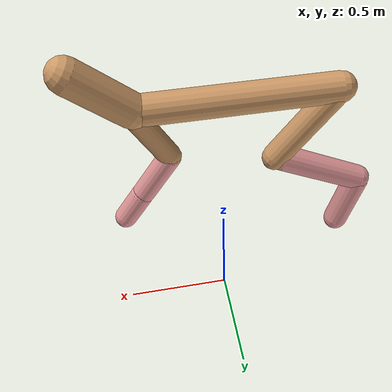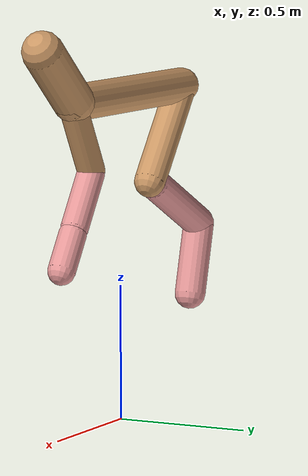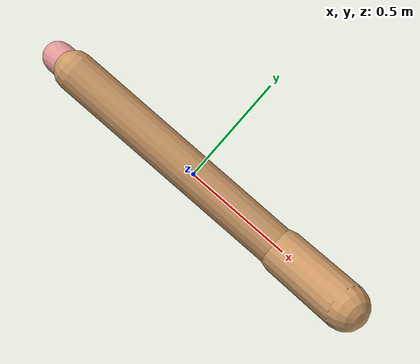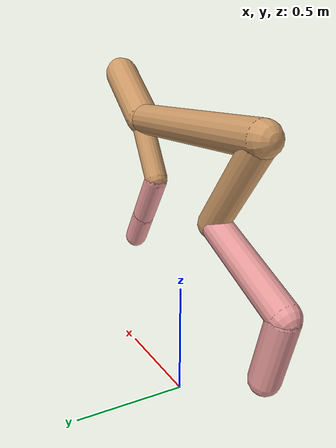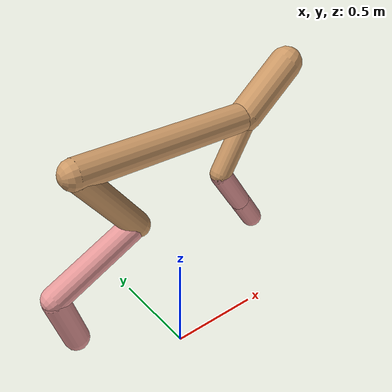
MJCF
<mujoco model="cheetah">
  <compiler angle="radian" coordinate="local" inertiafromgeom="true" settotalmass="14" />
  <default>
    <joint armature=".1" damping=".01" limited="true" solimplimit="0 .8 .03" solreflimit=".02 1" stiffness="8" />
    <geom conaffinity="0" condim="3" contype="1" friction="0.8 .1 .1" rgba="0.8 0.6 .4 1" solimp="0.0 0.8 0.01" solref="0.02 1" />
    <motor ctrllimited="true" ctrlrange="-1 1" />
  </default>
  <size nstack="300000" nuser_geom="1" />
  <option gravity="0 0 -9.81" timestep="0.01" />
  <worldbody>
    <body name="torso" pos="0.0 0.0 1.2042171462243685">
      <joint armature="0" axis="1 0 0" damping="0" limited="false" name="ignorex" pos="0 0 0" stiffness="0" type="slide" />
      <joint armature="0" axis="0 0 1" damping="0" limited="false" name="ignorez" pos="0 0 0" stiffness="0" type="slide" />
      <joint armature="0" axis="0 1 0" damping="0" limited="false" name="ignorey" pos="0 0 0" stiffness="0" type="hinge" />
      <geom fromto="-0.5 0.0 0.0 0.38236002416998827 0.0 0.0" name="torso" size="0.06691227638338529" type="capsule" />
      <geom axisangle="0 1 0 .87" name="head" pos="0.48236002416998824 0.0 0.1" size="0.07573339541106336 0.15" type="capsule" />

      <body name="bthigh" pos="-.5 0 0">
        <joint axis="0 1 0" damping="6" name="bthigh" pos="0 0 0" range="-.52 1.05" stiffness="240" type="hinge" />
        <geom axisangle="0 1 0 -3.8" name="bthigh" pos="0.1377769998977953 0.0 -0.1791100998671339" size="0.05914205279681215 0.20695888661231646" type="capsule" />
        <body name="bshin" pos="0.2355539997955906 0.0 -0.34822019973426777">
          <joint axis="0 1 0" damping="4.5" name="bshin" pos="0 0 0" range="-.785 .785" stiffness="180" type="hinge" />
          <geom axisangle="0 1 0 -2.03" name="bshin" pos="-0.19732866852772746 0.0 -0.09866433426386373" rgba="0.9 0.6 0.6 1" size="0.05914205279681215 0.21409539994377566" type="capsule" />
          <body name="bfoot" pos="-0.3946573370554549 0.0 -0.19732866852772746">
            <joint axis="0 1 0" damping="3" name="bfoot" pos="0 0 0" range="-.4 .785" stiffness="120" type="hinge" />
            <geom axisangle="0 1 0 -.27" name="bfoot" pos="0.041867970038832344 0.0 -0.13537310312555792" rgba="0.9 0.6 0.6 1" size="0.05914205279681215 0.13416645063143276" type="capsule" />
            <inertial mass="10" />
          </body>
        </body>
      </body>
      <body name="fthigh" pos="0.38236002416998827 0.0 0.0">
        <joint axis="0 1 0" damping="4.5" name="fthigh" pos="0 0 0" range="-1.5 0.8" stiffness="180" type="hinge" />
        <geom axisangle="0 1 0 .52" name="fthigh" pos="-0.0758510061337136 0.0 -0.13003029622922327" size="0.0509861337558345 0.1446121107135062" type="capsule" />
        <body name="fshin" pos="-0.1517020122674272 0.0 -0.26006059245844654">
          <joint axis="0 1 0" damping="3" name="fshin" pos="0 0 0" range="-1.2 1.1" stiffness="120" type="hinge" />
          <geom axisangle="0 1 0 -.6" name="fshin" pos="0.0704185774443082 0.0 -0.09750264569211903" rgba="0.9 0.6 0.6 1" size="0.0509861337558345 0.1152547649295613" type="capsule" />
          <body name="ffoot" pos="0.1408371548886164 0.0 -0.19500529138423806">
            <joint axis="0 1 0" damping="1.5" name="ffoot" pos="0 0 0" range="-3.1 -0.3" stiffness="60" type="hinge" />
            <geom axisangle="0 1 0 -.6" name="ffoot" pos="0.04830491422079014 0.0 -0.07514097767678467" rgba="0.9 0.6 0.6 1" size="0.0509861337558345 0.07611163721763484" type="capsule" />
            <inertial mass="10" />
          </body>
        </body>
      </body>
    </body>
  </worldbody>
  <actuator>
    <motor gear="120" joint="bthigh" name="bthigh" />
    <motor gear="90" joint="bshin" name="bshin" />
    <motor gear="60" joint="bfoot" name="bfoot" />
    <motor gear="120" joint="fthigh" name="fthigh" />
    <motor gear="60" joint="fshin" name="fshin" />
    <motor gear="30" joint="ffoot" name="ffoot" />
  </actuator>
</mujoco>
